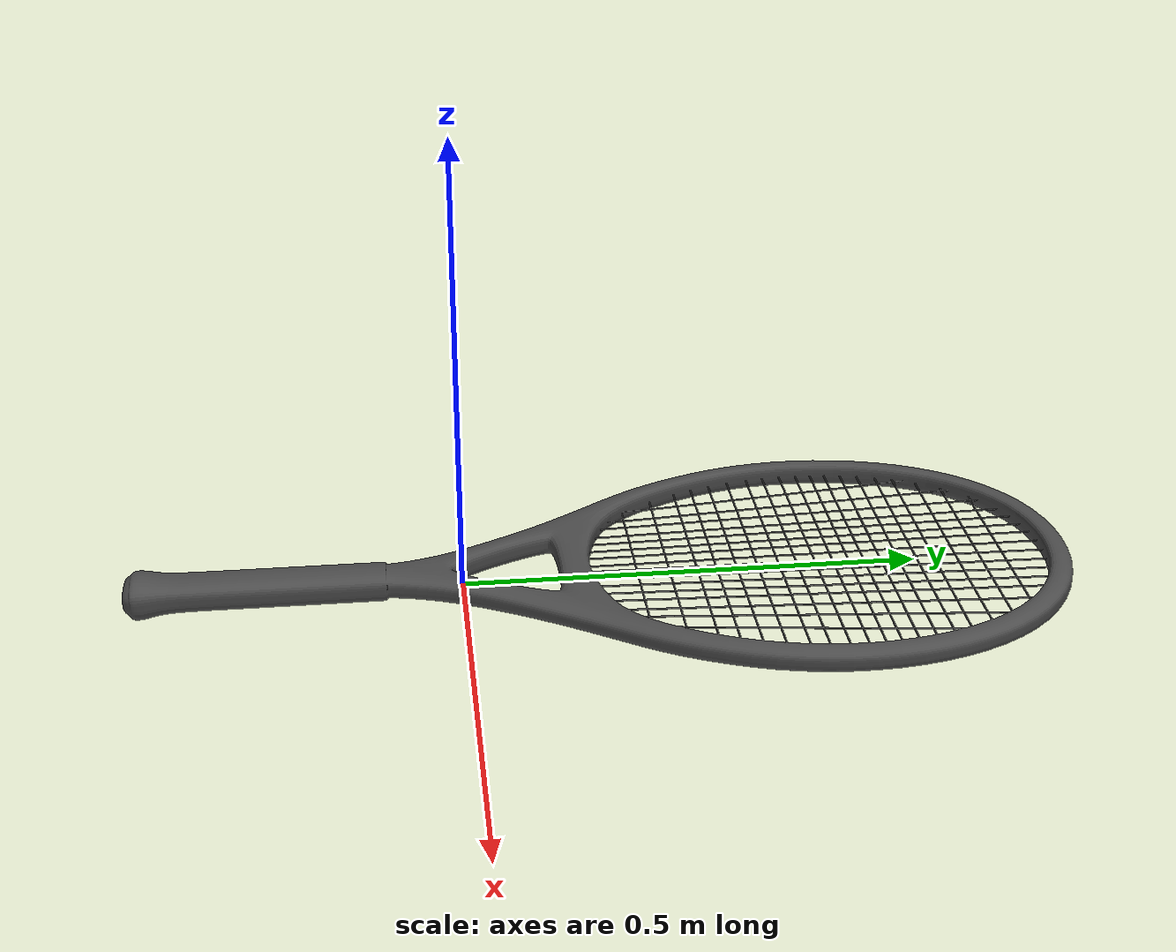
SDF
<?xml version="1.0" ?>
<sdf version="1.6">
  <model name="extra_tennis_racket">
    <static>true</static>
    <link name="link">
      <visual name="visual">
        <geometry>
          <mesh>
            <scale>0.015 0.015 0.015</scale>
            <uri>model://extra_tennis_racket/meshes/tennis_racket.dae</uri>
          </mesh>
  	</geometry>
        <material>
          <script>
            <uri>file://media/materials/scipts/gazebo.material</uri>
            <name>Gazebo/DarkGrey</name>
          </script>
        </material>
      </visual>
    </link>
  </model>
</sdf>
